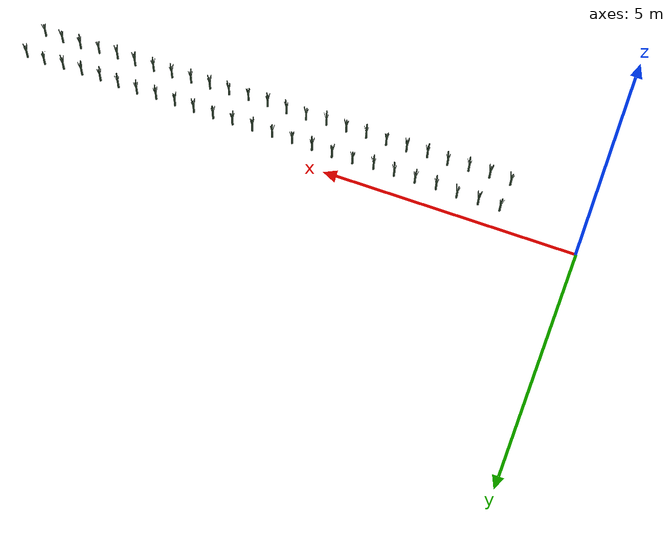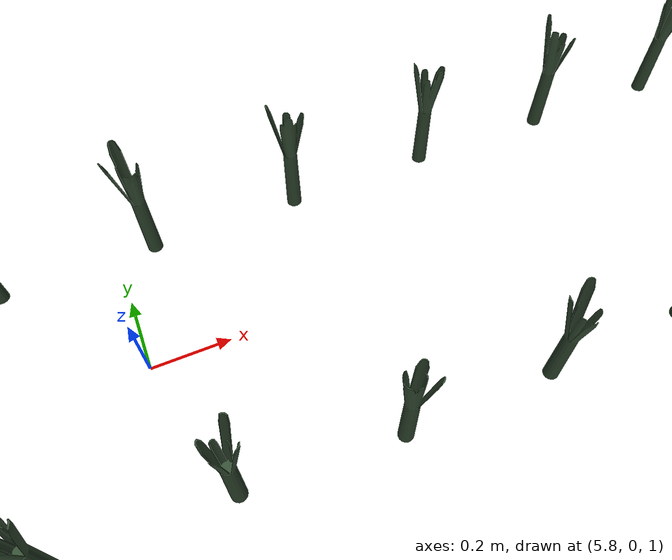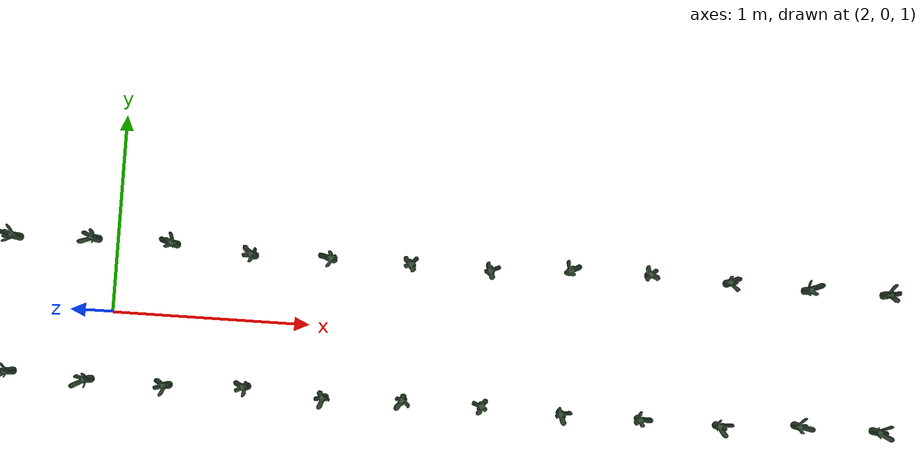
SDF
<sdf version="1.6">
 <world name="default">
  <light name="sun" type="directional">
   <pose>0 0 10 0 -0 0</pose>
   <diffuse>0.5 0.5 0.5 1</diffuse>
   <specular>0.1 0.1 0.1 1</specular>
   <attenuation>
    <range>1000</range>
    <constant>0.9</constant>
    <linear>0.01</linear>
    <quadratic>0.001</quadratic>
   </attenuation>
   <direction>0.9 0.5 -1</direction>
  </light>
  <scene><background>130 200 255 1</background><ambient>130 140 140 1</ambient></scene>
  <include>
   <uri>model://Leek</uri>
   <pose>1.500000 0.347338 1.133333 0 0 -23.958275</pose>
   <static>1</static>
  </include>
  <include>
   <uri>model://Leek</uri>
   <pose>1.900000 0.363710 1.133333 0 0 123.390293</pose>
   <static>1</static>
  </include>
  <include>
   <uri>model://Leek</uri>
   <pose>2.300000 0.362516 1.133333 0 0 112.640243</pose>
   <static>1</static>
  </include>
  <include>
   <uri>model://Leek</uri>
   <pose>2.700000 0.333117 1.133333 0 0 -151.949140</pose>
   <static>1</static>
  </include>
  <include>
   <uri>model://Leek</uri>
   <pose>3.100000 0.341261 1.133333 0 0 -78.654468</pose>
   <static>1</static>
  </include>
  <include>
   <uri>model://Leek</uri>
   <pose>3.500000 0.336625 1.133333 0 0 -120.375377</pose>
   <static>1</static>
  </include>
  <include>
   <uri>model://Leek</uri>
   <pose>3.900000 0.331006 1.133333 0 0 -170.943051</pose>
   <static>1</static>
  </include>
  <include>
   <uri>model://Leek</uri>
   <pose>4.300000 0.359122 1.133333 0 0 82.102463</pose>
   <static>1</static>
  </include>
  <include>
   <uri>model://Leek</uri>
   <pose>4.700000 0.367715 1.133333 0 0 159.436164</pose>
   <static>1</static>
  </include>
  <include>
   <uri>model://Leek</uri>
   <pose>5.100000 0.355280 1.133333 0 0 47.522284</pose>
   <static>1</static>
  </include>
  <include>
   <uri>model://Leek</uri>
   <pose>5.500000 0.344480 1.133333 0 0 -49.676408</pose>
   <static>1</static>
  </include>
  <include>
   <uri>model://Leek</uri>
   <pose>5.900000 0.348802 1.133333 0 0 -10.784705</pose>
   <static>1</static>
  </include>
  <include>
   <uri>model://Leek</uri>
   <pose>6.300000 0.351017 1.133333 0 0 9.152110</pose>
   <static>1</static>
  </include>
  <include>
   <uri>model://Leek</uri>
   <pose>6.700000 0.360817 1.133333 0 0 97.352303</pose>
   <static>1</static>
  </include>
  <include>
   <uri>model://Leek</uri>
   <pose>7.100000 0.360000 1.133333 0 0 89.997793</pose>
   <static>1</static>
  </include>
  <include>
   <uri>model://Leek</uri>
   <pose>7.500000 0.360943 1.133333 0 0 98.485278</pose>
   <static>1</static>
  </include>
  <include>
   <uri>model://Leek</uri>
   <pose>7.900000 0.348190 1.133333 0 0 -16.291559</pose>
   <static>1</static>
  </include>
  <include>
   <uri>model://Leek</uri>
   <pose>8.300000 0.341338 1.133333 0 0 -77.958680</pose>
   <static>1</static>
  </include>
  <include>
   <uri>model://Leek</uri>
   <pose>8.700000 0.360858 1.133333 0 0 97.723835</pose>
   <static>1</static>
  </include>
  <include>
   <uri>model://Leek</uri>
   <pose>9.100000 0.354075 1.133333 0 0 36.675924</pose>
   <static>1</static>
  </include>
  <include>
   <uri>model://Leek</uri>
   <pose>9.500000 0.330826 1.133333 0 0 -172.569759</pose>
   <static>1</static>
  </include>
  <include>
   <uri>model://Leek</uri>
   <pose>9.900000 0.335184 1.133333 0 0 -133.346475</pose>
   <static>1</static>
  </include>
  <include>
   <uri>model://Leek</uri>
   <pose>10.300000 0.338591 1.133333 0 0 -102.683667</pose>
   <static>1</static>
  </include>
  <include>
   <uri>model://Leek</uri>
   <pose>10.700000 0.369774 1.133333 0 0 177.962002</pose>
   <static>1</static>
  </include>
  <include>
   <uri>model://Leek</uri>
   <pose>11.100000 0.339325 1.133333 0 0 -96.072692</pose>
   <static>1</static>
  </include>
  <include>
   <uri>model://Leek</uri>
   <pose>1.500000 -0.335383 1.066667 0 0 131.549399</pose>
   <static>1</static>
  </include>
  <include>
   <uri>model://Leek</uri>
   <pose>1.900000 -0.349557 1.066667 0 0 3.989776</pose>
   <static>1</static>
  </include>
  <include>
   <uri>model://Leek</uri>
   <pose>2.300000 -0.353627 1.066667 0 0 -32.645601</pose>
   <static>1</static>
  </include>
  <include>
   <uri>model://Leek</uri>
   <pose>2.700000 -0.333350 1.066667 0 0 149.853589</pose>
   <static>1</static>
  </include>
  <include>
   <uri>model://Leek</uri>
   <pose>3.100000 -0.362041 1.066667 0 0 -108.372016</pose>
   <static>1</static>
  </include>
  <include>
   <uri>model://Leek</uri>
   <pose>3.500000 -0.346042 1.066667 0 0 35.618394</pose>
   <static>1</static>
  </include>
  <include>
   <uri>model://Leek</uri>
   <pose>3.900000 -0.347789 1.066667 0 0 19.903140</pose>
   <static>1</static>
  </include>
  <include>
   <uri>model://Leek</uri>
   <pose>4.300000 -0.360614 1.066667 0 0 -95.529407</pose>
   <static>1</static>
  </include>
  <include>
   <uri>model://Leek</uri>
   <pose>4.700000 -0.361845 1.066667 0 0 -106.607908</pose>
   <static>1</static>
  </include>
  <include>
   <uri>model://Leek</uri>
   <pose>5.100000 -0.367592 1.066667 0 0 -158.329673</pose>
   <static>1</static>
  </include>
  <include>
   <uri>model://Leek</uri>
   <pose>5.500000 -0.340240 1.066667 0 0 87.843043</pose>
   <static>1</static>
  </include>
  <include>
   <uri>model://Leek</uri>
   <pose>5.900000 -0.342399 1.066667 0 0 68.410614</pose>
   <static>1</static>
  </include>
  <include>
   <uri>model://Leek</uri>
   <pose>6.300000 -0.366336 1.066667 0 0 -147.024119</pose>
   <static>1</static>
  </include>
  <include>
   <uri>model://Leek</uri>
   <pose>6.700000 -0.366632 1.066667 0 0 -149.687172</pose>
   <static>1</static>
  </include>
  <include>
   <uri>model://Leek</uri>
   <pose>7.100000 -0.355635 1.066667 0 0 -50.711625</pose>
   <static>1</static>
  </include>
  <include>
   <uri>model://Leek</uri>
   <pose>7.500000 -0.349535 1.066667 0 0 4.181582</pose>
   <static>1</static>
  </include>
  <include>
   <uri>model://Leek</uri>
   <pose>7.900000 -0.347542 1.066667 0 0 22.119914</pose>
   <static>1</static>
  </include>
  <include>
   <uri>model://Leek</uri>
   <pose>8.300000 -0.331425 1.066667 0 0 167.177101</pose>
   <static>1</static>
  </include>
  <include>
   <uri>model://Leek</uri>
   <pose>8.700000 -0.341934 1.066667 0 0 72.595030</pose>
   <static>1</static>
  </include>
  <include>
   <uri>model://Leek</uri>
   <pose>9.100000 -0.334133 1.066667 0 0 142.799389</pose>
   <static>1</static>
  </include>
  <include>
   <uri>model://Leek</uri>
   <pose>9.500000 -0.365557 1.066667 0 0 -140.011929</pose>
   <static>1</static>
  </include>
  <include>
   <uri>model://Leek</uri>
   <pose>9.900000 -0.354767 1.066667 0 0 -42.901820</pose>
   <static>1</static>
  </include>
  <include>
   <uri>model://Leek</uri>
   <pose>10.300000 -0.331468 1.066667 0 0 166.784660</pose>
   <static>1</static>
  </include>
  <include>
   <uri>model://Leek</uri>
   <pose>10.700000 -0.336019 1.066667 0 0 125.829251</pose>
   <static>1</static>
  </include>
  <include>
   <uri>model://Leek</uri>
   <pose>11.100000 -0.361759 1.066667 0 0 -105.829939</pose>
   <static>1</static>
  </include>
 </world>
</sdf>

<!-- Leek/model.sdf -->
<sdf version='1.6'>
  <model name='Leek'>
    <link name='link'>
      <pose frame=''>0 0 0 0 -0 0</pose>
      <inertial>
        <mass>1</mass>
        <inertia>
          <ixx>0.145833</ixx>
          <ixy>0</ixy>
          <ixz>0</ixz>
          <iyy>0.145833</iyy>
          <iyz>0</iyz>
          <izz>0.125</izz>
        </inertia>
        <pose frame=''>0 0 0 0 -0 0</pose>
      </inertial>
      <self_collide>0</self_collide>
      <kinematic>0</kinematic>
      <gravity>1</gravity>
      <visual name='visual'>
        <geometry>
          <mesh>
            <uri>model://Leek/Poireau.dae</uri>
            <scale>1 1 1</scale>
          </mesh>
        </geometry>
        <material>
          <script>
            <name>Gazebo/Grey</name>
            <uri>file://media/materials/scripts/gazebo.material</uri>
          </script>
          <ambient>0.3 0.7 0.4 0</ambient>
          <diffuse>0.2 0.3 0.2 0</diffuse>
          <specular>0 0 0 1</specular>
          <emissive>0 0 0 1</emissive>
          <shader type='vertex'>
            <normal_map>__default__</normal_map>
          </shader>
        </material>
        <pose frame=''>0 0 -0.08 0 -0 0</pose>
        <cast_shadows>1</cast_shadows>
        <transparency>0</transparency>
      </visual>
      <collision name='collision'>
        <laser_retro>0</laser_retro>
        <max_contacts>10</max_contacts>
        <pose frame=''>0 0 0 0 -0 0</pose>
        <geometry>
          <cylinder>
            <radius>0.02</radius>
            <length>0.25</length>
          </cylinder>
        </geometry>
        <surface>
          <friction>
            <ode>
              <mu>1</mu>
              <mu2>1</mu2>
              <fdir1>0 0 0</fdir1>
              <slip1>0</slip1>
              <slip2>0</slip2>
            </ode>
            <torsional>
              <coefficient>1</coefficient>
              <patch_radius>0</patch_radius>
              <surface_radius>0</surface_radius>
              <use_patch_radius>1</use_patch_radius>
              <ode>
                <slip>0</slip>
              </ode>
            </torsional>
          </friction>
          <bounce>
            <restitution_coefficient>0</restitution_coefficient>
            <threshold>1e+06</threshold>
          </bounce>
          <contact>
            <collide_without_contact>0</collide_without_contact>
            <collide_without_contact_bitmask>1</collide_without_contact_bitmask>
            <collide_bitmask>1</collide_bitmask>
            <ode>
              <soft_cfm>0</soft_cfm>
              <soft_erp>0.2</soft_erp>
              <kp>1e+13</kp>
              <kd>1</kd>
              <max_vel>0.01</max_vel>
              <min_depth>0</min_depth>
            </ode>
            <bullet>
              <split_impulse>1</split_impulse>
              <split_impulse_penetration_threshold>-0.01</split_impulse_penetration_threshold>
              <soft_cfm>0</soft_cfm>
              <soft_erp>0.2</soft_erp>
              <kp>1e+13</kp>
              <kd>1</kd>
            </bullet>
          </contact>
        </surface>
      </collision>
    </link>
    <static>0</static>
    <allow_auto_disable>1</allow_auto_disable>
  </model>
</sdf>
